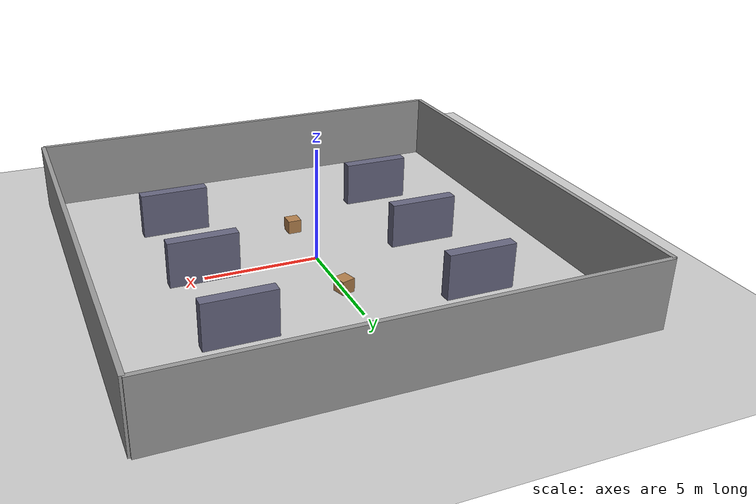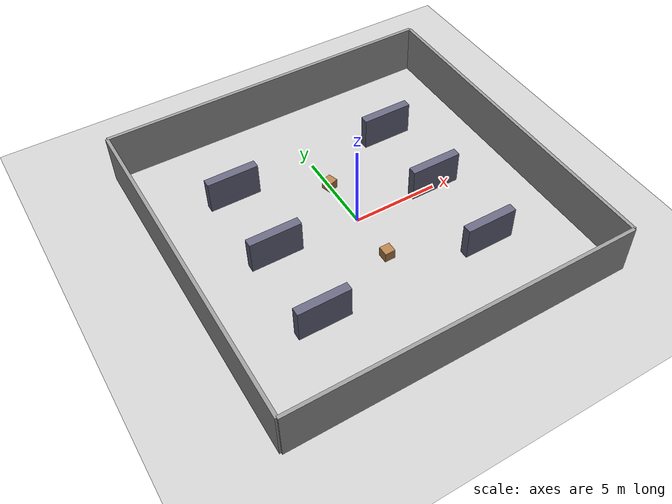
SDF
<?xml version="1.0" ?>
<sdf version="1.6">
  <world name="warehouse">

    <!-- Physics settings -->
    <physics type="ode">
      <real_time_update_rate>1000.0</real_time_update_rate>
      <max_step_size>0.001</max_step_size>
      <real_time_factor>1</real_time_factor>
    </physics>

    <!-- Lighting -->
    <include>
      <uri>model://sun</uri>
    </include>

    <!-- Ground plane -->
    <include>
      <uri>model://ground_plane</uri>
    </include>

    <!-- Warehouse walls -->
    <model name="wall_north">
      <static>true</static>
      <pose>10 0 1.5 0 0 0</pose>
      <link name="link">
        <collision name="collision">
          <geometry>
            <box><size>0.2 20 3</size></box>
          </geometry>
        </collision>
        <visual name="visual">
          <geometry>
            <box><size>0.2 20 3</size></box>
          </geometry>
          <material>
            <ambient>0.6 0.6 0.6 1</ambient>
          </material>
        </visual>
      </link>
    </model>

    <model name="wall_south">
      <static>true</static>
      <pose>-10 0 1.5 0 0 0</pose>
      <link name="link">
        <collision name="collision">
          <geometry>
            <box><size>0.2 20 3</size></box>
          </geometry>
        </collision>
        <visual name="visual">
          <geometry>
            <box><size>0.2 20 3</size></box>
          </geometry>
          <material>
            <ambient>0.6 0.6 0.6 1</ambient>
          </material>
        </visual>
      </link>
    </model>

    <model name="wall_east">
      <static>true</static>
      <pose>0 10 1.5 0 0 0</pose>
      <link name="link">
        <collision name="collision">
          <geometry>
            <box><size>20 0.2 3</size></box>
          </geometry>
        </collision>
        <visual name="visual">
          <geometry>
            <box><size>20 0.2 3</size></box>
          </geometry>
          <material>
            <ambient>0.6 0.6 0.6 1</ambient>
          </material>
        </visual>
      </link>
    </model>

    <model name="wall_west">
      <static>true</static>
      <pose>0 -10 1.5 0 0 0</pose>
      <link name="link">
        <collision name="collision">
          <geometry>
            <box><size>20 0.2 3</size></box>
          </geometry>
        </collision>
        <visual name="visual">
          <geometry>
            <box><size>20 0.2 3</size></box>
          </geometry>
          <material>
            <ambient>0.6 0.6 0.6 1</ambient>
          </material>
        </visual>
      </link>
    </model>

    <!-- Shelving units -->
    <model name="shelf_1">
      <static>true</static>
      <pose>-5 -5 1 0 0 0</pose>
      <link name="link">
        <collision name="collision">
          <geometry>
            <box><size>3 0.5 2</size></box>
          </geometry>
        </collision>
        <visual name="visual">
          <geometry>
            <box><size>3 0.5 2</size></box>
          </geometry>
          <material>
            <ambient>0.4 0.4 0.5 1</ambient>
          </material>
        </visual>
      </link>
    </model>

    <model name="shelf_2">
      <static>true</static>
      <pose>-5 0 1 0 0 0</pose>
      <link name="link">
        <collision name="collision">
          <geometry>
            <box><size>3 0.5 2</size></box>
          </geometry>
        </collision>
        <visual name="visual">
          <geometry>
            <box><size>3 0.5 2</size></box>
          </geometry>
          <material>
            <ambient>0.4 0.4 0.5 1</ambient>
          </material>
        </visual>
      </link>
    </model>

    <model name="shelf_3">
      <static>true</static>
      <pose>-5 5 1 0 0 0</pose>
      <link name="link">
        <collision name="collision">
          <geometry>
            <box><size>3 0.5 2</size></box>
          </geometry>
        </collision>
        <visual name="visual">
          <geometry>
            <box><size>3 0.5 2</size></box>
          </geometry>
          <material>
            <ambient>0.4 0.4 0.5 1</ambient>
          </material>
        </visual>
      </link>
    </model>

    <model name="shelf_4">
      <static>true</static>
      <pose>5 -5 1 0 0 0</pose>
      <link name="link">
        <collision name="collision">
          <geometry>
            <box><size>3 0.5 2</size></box>
          </geometry>
        </collision>
        <visual name="visual">
          <geometry>
            <box><size>3 0.5 2</size></box>
          </geometry>
          <material>
            <ambient>0.4 0.4 0.5 1</ambient>
          </material>
        </visual>
      </link>
    </model>

    <model name="shelf_5">
      <static>true</static>
      <pose>5 0 1 0 0 0</pose>
      <link name="link">
        <collision name="collision">
          <geometry>
            <box><size>3 0.5 2</size></box>
          </geometry>
        </collision>
        <visual name="visual">
          <geometry>
            <box><size>3 0.5 2</size></box>
          </geometry>
          <material>
            <ambient>0.4 0.4 0.5 1</ambient>
          </material>
        </visual>
      </link>
    </model>

    <model name="shelf_6">
      <static>true</static>
      <pose>5 5 1 0 0 0</pose>
      <link name="link">
        <collision name="collision">
          <geometry>
            <box><size>3 0.5 2</size></box>
          </geometry>
        </collision>
        <visual name="visual">
          <geometry>
            <box><size>3 0.5 2</size></box>
          </geometry>
          <material>
            <ambient>0.4 0.4 0.5 1</ambient>
          </material>
        </visual>
      </link>
    </model>

    <!-- Boxes/obstacles -->
    <model name="box_1">
      <static>true</static>
      <pose>0 -3 0.3 0 0 0</pose>
      <link name="link">
        <collision name="collision">
          <geometry>
            <box><size>0.6 0.6 0.6</size></box>
          </geometry>
        </collision>
        <visual name="visual">
          <geometry>
            <box><size>0.6 0.6 0.6</size></box>
          </geometry>
          <material>
            <ambient>0.7 0.5 0.3 1</ambient>
          </material>
        </visual>
      </link>
    </model>

    <model name="box_2">
      <static>true</static>
      <pose>0 3 0.3 0 0 0.3</pose>
      <link name="link">
        <collision name="collision">
          <geometry>
            <box><size>0.6 0.6 0.6</size></box>
          </geometry>
        </collision>
        <visual name="visual">
          <geometry>
            <box><size>0.6 0.6 0.6</size></box>
          </geometry>
          <material>
            <ambient>0.7 0.5 0.3 1</ambient>
          </material>
        </visual>
      </link>
    </model>

  </world>
</sdf>
